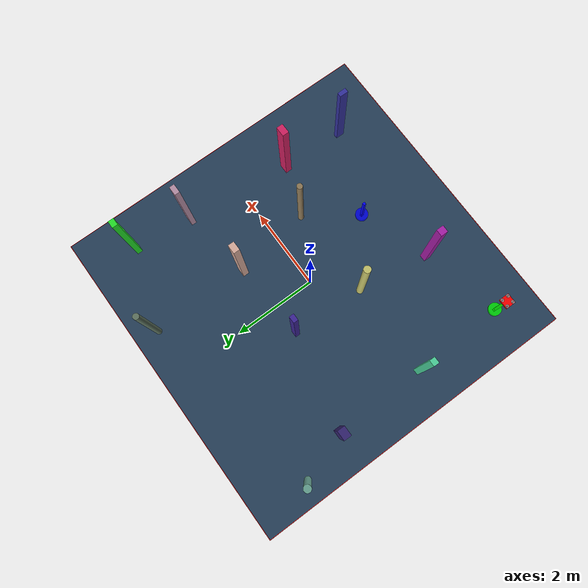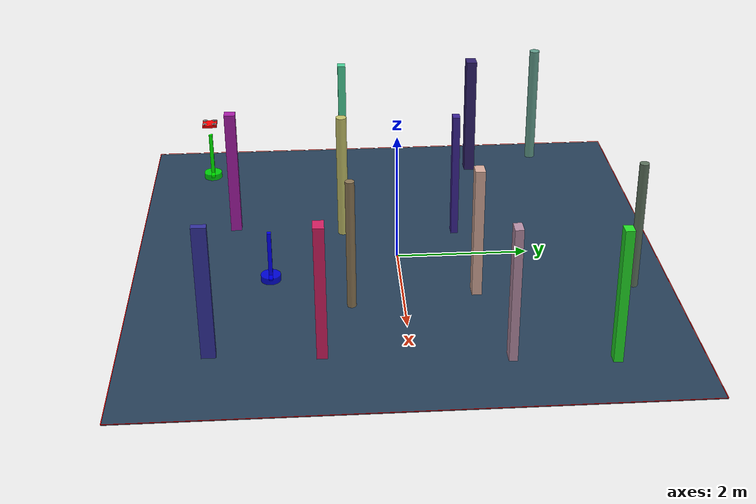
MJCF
<?xml version='1.0' encoding='utf-8'?>
<mujoco model="complex_uav_env">
  <compiler angle="degree" coordinate="local" inertiafromgeom="true" />
  <option integrator="RK4" timestep="0.01" />

  <visual>
    <headlight diffuse="0.6 0.6 0.6" ambient="0.3 0.3 0.3" />
    <rgba haze="0.15 0.25 0.35 1" />
    <global offwidth="2560" offheight="1440" />
  </visual>

  <asset>
    <texture type="skybox" builtin="gradient" rgb1="0.3 0.5 0.7" rgb2="0 0 0" width="512" height="3072" />
    <texture name="grid" type="2d" builtin="checker" rgb1="0.1 0.2 0.3" rgb2="0.2 0.3 0.4" width="512" height="512" />
    <material name="grid" texture="grid" texrepeat="1 1" />
  </asset>

  <worldbody>

    <geom name="ground" type="plane" size="4.0 4.0 0.1" material="grid" />
    <light name="light1" pos="0 0 4" dir="0 0 -1" diffuse="1 1 1" />

    <geom name="start_marker" type="cylinder" size="0.15 0.05" pos="-3.0 -3.0 0.05" rgba="0 1 0 0.8" />
    <geom name="start_pole" type="box" size="0.03 0.03 0.4" pos="-3.0 -3.0 0.4" rgba="0 1 0 1" />

    <geom name="goal_marker" type="cylinder" size="0.15 0.05" pos="0.5952119190867782 -1.9367186284248645 0.05" rgba="0 0 1 0.8" />
    <geom name="goal_pole" type="box" size="0.03 0.03 0.4" pos="0.5952119190867782 -1.9367186284248645 0.4" rgba="0 0 1 1" />

    <body name="chassis" pos="-3.0 -3.0 1.0">
      <joint type="free" name="root" />
      <geom type="box" size="0.12 0.12 0.02" rgba="1.0 0.0 0.0 1.0" mass="0.8" />

      <geom type="box" size="0.08 0.01 0.005" pos="0 0 0.01" rgba="0.3 0.3 0.3 1" />
      <geom type="box" size="0.01 0.08 0.005" pos="0 0 0.01" rgba="0.3 0.3 0.3 1" />

      <geom type="cylinder" size="0.015 0.02" pos="0.08 0.08 0.015" rgba="0.2 0.2 0.2 1" />
      <geom type="cylinder" size="0.015 0.02" pos="-0.08 0.08 0.015" rgba="0.2 0.2 0.2 1" />
      <geom type="cylinder" size="0.015 0.02" pos="0.08 -0.08 0.015" rgba="0.2 0.2 0.2 1" />
      <geom type="cylinder" size="0.015 0.02" pos="-0.08 -0.08 0.015" rgba="0.2 0.2 0.2 1" />

      <geom type="cylinder" size="0.04 0.002" pos="0.08 0.08 0.035" rgba="0.7 0.7 0.7 0.8" />
      <geom type="cylinder" size="0.04 0.002" pos="-0.08 0.08 0.035" rgba="0.7 0.7 0.7 0.8" />
      <geom type="cylinder" size="0.04 0.002" pos="0.08 -0.08 0.035" rgba="0.7 0.7 0.7 0.8" />
      <geom type="cylinder" size="0.04 0.002" pos="-0.08 -0.08 0.035" rgba="0.7 0.7 0.7 0.8" />

      <site name="motor1" pos="0.08 0.08 0" size="0.01" />
      <site name="motor2" pos="-0.08 0.08 0" size="0.01" />
      <site name="motor3" pos="0.08 -0.08 0" size="0.01" />
      <site name="motor4" pos="-0.08 -0.08 0" size="0.01" />
    </body>
    <geom name="test_obs_0" type="box" size="0.10475403540272614 0.072227162591623 1.0" pos="1.1310767383060996 1.081859112039026 1.0" rgba="0.8539731822201321 0.6819887843147627 0.619072597569439 1.0" />
    <geom name="test_obs_1" type="cylinder" size="0.08318453582011365 1.0" pos="-3.483231640888339 2.6324377079682297 1.0" rgba="0.3916770123184057 0.6254693033820333 0.5597206384766061 1.0" />
    <geom name="test_obs_2" type="cylinder" size="0.06711963167430002 1.0" pos="1.4018746203590384 -0.7573347032192492 1.0" rgba="0.5559579118045382 0.4716258739452234 0.3378170297272638 1.0" />
    <geom name="test_obs_3" type="box" size="0.10400030122696281 0.06031318492968116 1.0" pos="2.8641099538314165 1.3591522878904763 1.0" rgba="0.7288230096260851 0.5668244079084673 0.6614326046566601 1.0" />
    <geom name="test_obs_4" type="box" size="0.11452730282027111 0.0765186583332872 1.0" pos="2.6250257075406322 -1.2074112877102587 1.0" rgba="0.8333197152696934 0.1253908068036762 0.38787514316465943 1.0" />
    <geom name="test_obs_5" type="cylinder" size="0.0699223680736808 1.0" pos="1.1171443184489158 3.432881040548269 1.0" rgba="0.37363187275352006 0.45629905358451306 0.37704091224347114 1.0" />
    <geom name="test_obs_6" type="box" size="0.07828769589729033 0.055672334326251974 1.0" pos="-0.7482814227422214 0.9598965749762899 1.0" rgba="0.23688225437062674 0.14405766491325195 0.5911673500337099 1.0" />
    <geom name="test_obs_7" type="box" size="0.07980648358645503 0.08465525496920817 1.0" pos="-1.0797148897723283 -2.5161308304913965 1.0" rgba="0.6709479084857796 0.12113337236818573 0.6699799237189293 1.0" />
    <geom name="test_obs_8" type="cylinder" size="0.0825285421488777 1.0" pos="-0.820648216713532 -0.8077229370307665 1.0" rgba="0.775623717479108 0.7659314951542227 0.4182465250157428 1.0" />
    <geom name="test_obs_9" type="box" size="0.11122302036523911 0.08700068015885459 1.0" pos="-3.0914719075112935 1.4783217755142983 1.0" rgba="0.19637058940093982 0.13444722702466727 0.4353541796279855 1.0" />
    <geom name="test_obs_10" type="box" size="0.05083335488478446 0.10142321618370817 1.0" pos="2.566971205345398 -2.7436390117906955 1.0" rgba="0.20198149100301077 0.1929869737982733 0.6259889032045295 1.0" />
    <geom name="test_obs_11" type="box" size="0.0712403176444074 0.06493750576517297 1.0" pos="-3.045661198811578 -0.7335070356706138 1.0" rgba="0.29413047516654456 0.8240239756658281 0.6055074713315031 1.0" />
    <geom name="test_obs_12" type="box" size="0.08385331545252495 0.06531021608203019 1.0" pos="3.008792397296314 2.7643820846753515 1.0" rgba="0.14618691524939964 0.8927595201719727 0.16235203238999843 1.0" />
  <geom name="boundary_north" type="box" size="4.0 0.005 0.002" pos="0 4.0 0.002" rgba="1.0 0.0 0.0 1.0" /><geom name="boundary_south" type="box" size="4.0 0.005 0.002" pos="0 -4.0 0.002" rgba="1.0 0.0 0.0 1.0" /><geom name="boundary_east" type="box" size="0.005 4.0 0.002" pos="4.0 0 0.002" rgba="1.0 0.0 0.0 1.0" /><geom name="boundary_west" type="box" size="0.005 4.0 0.002" pos="-4.0 0 0.002" rgba="1.0 0.0 0.0 1.0" /></worldbody>

  <actuator>
    <motor name="m1" gear="0 0 1 0 0 0" site="motor1" />
    <motor name="m2" gear="0 0 1 0 0 0" site="motor2" />
    <motor name="m3" gear="0 0 1 0 0 0" site="motor3" />
    <motor name="m4" gear="0 0 1 0 0 0" site="motor4" />
  </actuator>
</mujoco>
